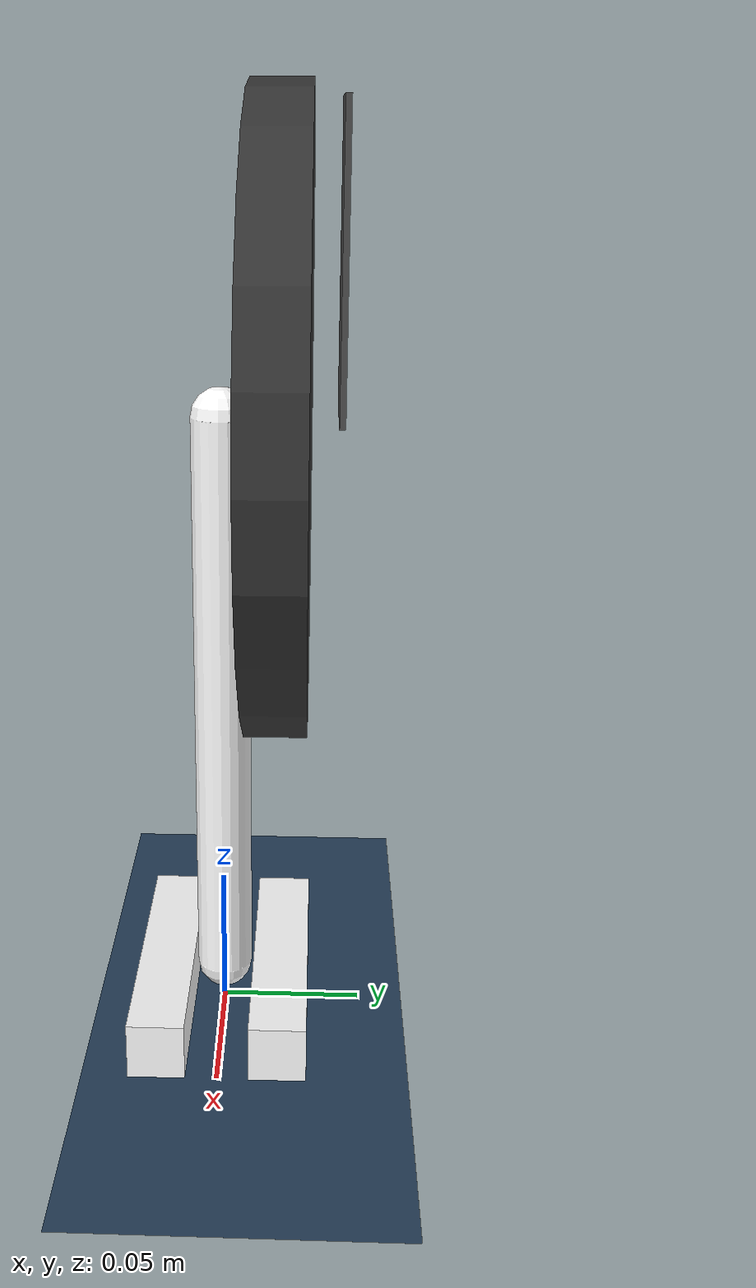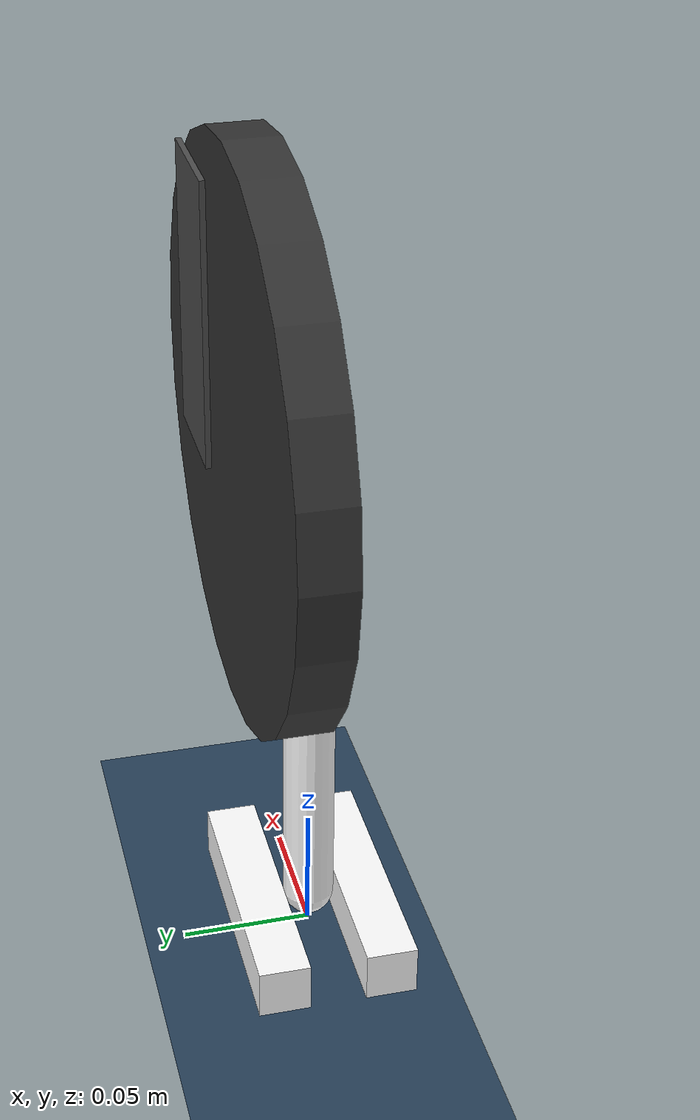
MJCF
<mujoco>
    <asset>
        <texture name="grid" type="2d" builtin="checker" width="512" height="512" rgb1=".1 .2 .3" rgb2=".2 .3 .4"/>
        <material name="grid" texture="grid" texrepeat="1 1" texuniform="true" reflectance=".2"/>
    </asset>

    <worldbody>
        <light diffuse=".5 .5 .5" pos="0 0 3" dir="0 0 -1" />
        <geom type="plane" size="1 1 .1" material="grid" />

        <!-- Fixed gear body -->
        <body name="stand" pos="0 0 0">
            <geom type="box" size=".05 .01 .02" pos="0 -.021 0" rgba="1 1 1 1" />
            <geom type="box" size=".05 .01 .02" pos="0 .021 0" rgba="1 1 1 1" />
            <body name="pend_arm" pos="0 0 .015">
                <geom type="capsule" size=".01" fromto="0 0 0 0 0 0.207" rgba="1 1 1 1" />
                <joint type="hinge" axis="0 1 0" pos="0 0 0" limited="true" range="-30 30" />

                <body name="wheel" pos="0 0.02 0.207">
                    <!-- Central cylinder representing the wheel -->
                    <geom type="cylinder" size="0.105 0.01" rgba=".2 .2 .2 1" euler="90 0 0"/>

                    <!-- Spokes -->
                    <geom type="box" size="0.02 0.001 0.05" pos="0 0.02 0.05" euler="0 0 0" rgba="0.3 0.3 0.3 1"/>

                    <!-- Revolute joint for wheel rotation -->
                    <joint name="wheel_rot" type="hinge" pos="0 0 0" axis="0 1 0" damping=".1"/>

                    <camera name="wheel_cam" pos="0 0.5 0" zaxis="0 1 0" fovy="45" mode="trackcom" />
                </body>
            </body>
        </body>
    </worldbody>

    <actuator>
        <!-- Agregar medidas en el slider (-a, a) -->
        <motor gear="1" joint="wheel_rot" name="motor"/>
    </actuator>
</mujoco>
